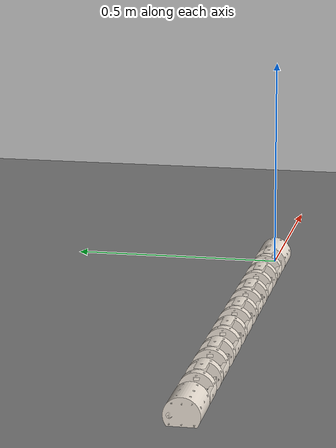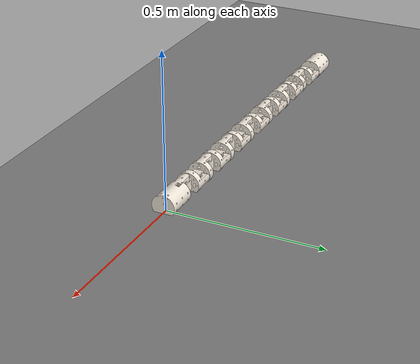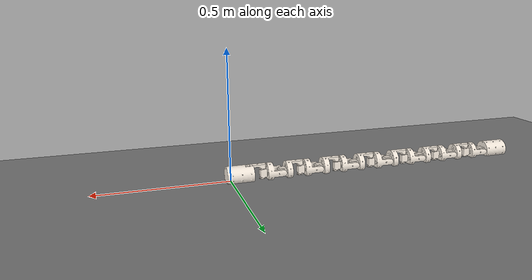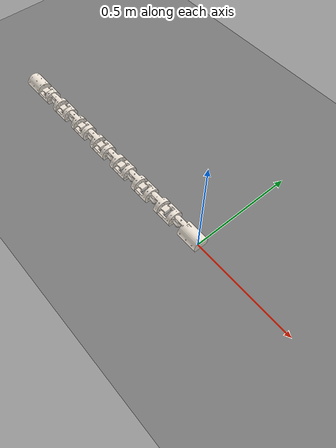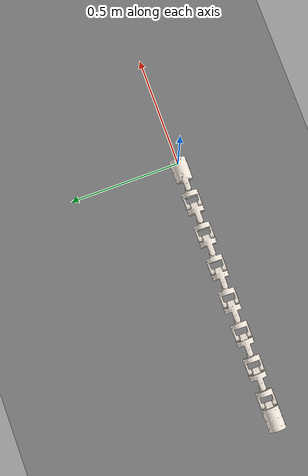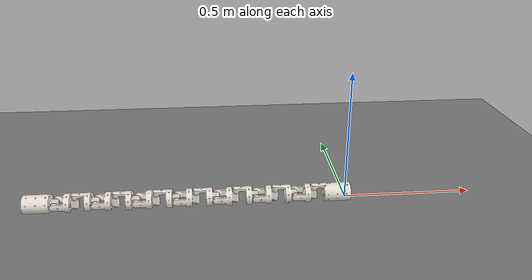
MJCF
<?xml version="1.0"?>

<mujoco model="14DOF-NW">
  <compiler angle="radian" coordinate="local" meshdir="meshes/" />
  <option timestep="0.002" gravity="0 0 -9.81"/>

  <asset>
    <texture type="skybox" builtin="flat" rgb1="1 1 1" rgb2=".9 .9 .9" width="128" height="128" />
    <texture name="floortex" type="2d" builtin="checker" rgb1=".1 .1 .1" rgb2=".9 .9 .9"
      width="512" height="512" mark="cross" markrgb=".8 .8 .8" />

    <!-- 定义材料，引用floortex纹理 -->
    <material name="floortex" texture="floortex" texuniform="true" reflectance="0.3" texrepeat="1 1"/>

    <mesh name="base_link" file="base_link.STL" />
    <mesh name="link1" file="link1.STL" />
    <mesh name="link2" file="link2.STL" />
    <mesh name="link3" file="link3.STL" />
    <mesh name="link4" file="link4.STL" />
    <mesh name="link5" file="link5.STL" />
    <mesh name="link6" file="link6.STL" />
    <mesh name="link7" file="link7.STL" />
    <mesh name="link8" file="link8.STL" />
    <mesh name="link9" file="link9.STL" />
    <mesh name="link10" file="link10.STL" />
    <mesh name="link11" file="link11.STL" />
    <mesh name="link12" file="link12.STL" />
    <mesh name="link13" file="link13.STL" />
    <mesh name="link14" file="link14.STL" />
    <material name="base_link_mat" rgba="0.95 0.91 0.86 1" specular="0" />
    <material name="link1_mat" rgba="0.95 0.91 0.86 1" specular="0" />
    <material name="link2_mat" rgba="0.95 0.91 0.86 1" specular="0" />
    <material name="link3_mat" rgba="0.95 0.91 0.86 1" specular="0" />
    <material name="link4_mat" rgba="0.95 0.91 0.86 1" specular="0" />
    <material name="link5_mat" rgba="0.95 0.91 0.86 1" specular="0" />
    <material name="link6_mat" rgba="0.95 0.91 0.86 1" specular="0" />
    <material name="link7_mat" rgba="0.95 0.91 0.86 1" specular="0" />
    <material name="link8_mat" rgba="0.95 0.91 0.86 1" specular="0" />
    <material name="link9_mat" rgba="0.95 0.91 0.86 1" specular="0" />
    <material name="link10_mat" rgba="0.95 0.91 0.86 1" specular="0" />
    <material name="link11_mat" rgba="0.95 0.91 0.86 1" specular="0" />
    <material name="link12_mat" rgba="0.95 0.91 0.86 1" specular="0" />
    <material name="link13_mat" rgba="0.95 0.91 0.86 1" specular="0" />
    <material name="link14_mat" rgba="0.95 0.91 0.86 1" specular="0" />
  </asset>

  <default>
    <default class="sts3215">
        <geom contype="0" conaffinity="0"/>
        <joint damping="0.60" frictionloss="0.052" armature="0.028"/>
        <position kp="17.8" kv="0.0" forcerange="-3.35 3.35"/>
    </default>
  </default>

  <worldbody>
    <!-- 地板 -->
    <geom name="floor" pos="0 0 0" size="10 10 .1" type="plane" material="floortex"
               condim="3" friction="0.8 0.1 0.1" density="0"/>
    <light directional="true" ambient=".3 .3 .3" pos="30 30 30" dir="0 -2 -1" diffuse=".5 .5 .5" specular=".5 .5 .5" />

    <!-- 蛇头 -->
    <body name="base_link" pos="0 0 0">
      <freejoint name="root_free"/>
      <inertial pos="-0.042451 -0.0001874 0.0174166" mass="0.1894535" fullinertia="0.0000697022 0.0002499936 0.0002906946 -0.0000000319 0.0000014988 -0.000000783"/>
      <geom pos="0 0 0" group="1" contype="0" conaffinity="0" material="base_link_mat" type="mesh" mesh="base_link" />
      <geom pos="0 0 0" rgba="0.9373 0.2667 0.2667 1" group="3" contype="1" conaffinity="1" type="mesh" mesh="base_link" />
      <body name="link1" pos="-0.1240009 -0.000016 0.0018299" quat="0.9999905 0.0043633 0 0">
        <joint name="yaw1" type="hinge" axis="0 0 1" limited="true" range="-1.57 1.57" damping="0.6" frictionloss="0.052"/>
        <inertial pos="-0.0334175 0.0001431 0.0182064" mass="0.116231" fullinertia="0.000063965 0.0000582243 0.000073187 -0.0000000058 0.0000001038 -0.0000000003"/>
        <geom pos="0 0 0" group="1" contype="0" conaffinity="0" material="link1_mat" type="mesh" mesh="link1" />
        <geom pos="0 0 0" rgba="0.9373 0.2667 0.2667 1" group="3" contype="1" conaffinity="1" type="mesh" mesh="link1" />
        <body name="link2" pos="-0.07581 0.0183 0.01835" quat="0.7071001 0.7071001 0.0030853 0.0030853">
          <joint name="pitch1" type="hinge" axis="-0.0087265 0 0.9999619" limited="true" range="-1.57 1.57" damping="0.6" frictionloss="0.052"/>
          <inertial pos="-0.0335751 0.0001431 0.0179141" mass="0.116231" fullinertia="0.0000639639 0.0000582243 0.0000731881 -0.0000000058 0.0000000233 -0.0000000004"/>
          <geom pos="0 0 0" group="1" contype="0" conaffinity="0" material="link2_mat" type="mesh" mesh="link2" />
          <geom pos="0 0 0" rgba="0.9373 0.2667 0.2667 1" group="3" contype="1" conaffinity="1" type="mesh" mesh="link2" />
          <body name="link3" pos="-0.0759672 -0.01835 0.0176877" quat="0.7040147 -0.7101583 -0.0000001 -0.0061973">
            <joint name="yaw2" type="hinge" axis="-0.0087259 -0.0087265 0.9999239" limited="true" range="-1.57 1.57" damping="0.6" frictionloss="0.052"/>
            <inertial pos="-0.0335751 -0.0000158 0.0179147" mass="0.116231" fullinertia="0.0000639639 0.0000582255 0.000073187 -0.0000000056 0.0000000233 -0.0000001309"/>
            <geom pos="0 0 0" group="1" contype="0" conaffinity="0" material="link3_mat" type="mesh" mesh="link3" />
            <geom pos="0 0 0" rgba="0.9373 0.2667 0.2667 1" group="3" contype="1" conaffinity="1" type="mesh" mesh="link3" />
            <body name="link4" pos="-0.0759686 0.0181892 0.0178472" quat="0.7040147 0.7101583 0.0000001 0.0061973">
              <joint name="pitch2" type="hinge" axis="-0.0087265 0 0.9999619" limited="true" range="-1.57 1.57" damping="0.6" frictionloss="0.052"/>
              <inertial pos="-0.0335751 0.0001431 0.0179141" mass="0.116231" fullinertia="0.0000639639 0.0000582243 0.0000731881 -0.0000000058 0.0000000233 -0.0000000004"/>
              <geom pos="0 0 0" group="1" contype="0" conaffinity="0" material="link4_mat" type="mesh" mesh="link4" />
              <geom pos="0 0 0" rgba="0.9373 0.2667 0.2667 1" group="3" contype="1" conaffinity="1" type="mesh" mesh="link4" />
              <body name="link5" pos="-0.0759672 -0.01835 0.0176877" quat="0.7040147 -0.7101583 -0.0000001 -0.0061973">
                <joint name="yaw3" type="hinge" axis="-0.0087259 -0.0087265 0.9999239" limited="true" range="-1.57 1.57" damping="0.6" frictionloss="0.052"/>
                <inertial pos="-0.0335751 -0.0000158 0.0179147" mass="0.116231" fullinertia="0.0000639639 0.0000582255 0.000073187 -0.0000000056 0.0000000233 -0.0000001309"/>
                <geom pos="0 0 0" group="1" contype="0" conaffinity="0" material="link5_mat" type="mesh" mesh="link5" />
                <geom pos="0 0 0" rgba="0.9373 0.2667 0.2667 1" group="3" contype="1" conaffinity="1" type="mesh" mesh="link5" />
                <body name="link6" pos="-0.0759686 0.0181892 0.0178472" quat="0.7040147 0.7101583 0.0000001 0.0061973">
                  <joint name="pitch3" type="hinge" axis="-0.0087265 0 0.9999619" limited="true" range="-1.57 1.57" damping="0.6" frictionloss="0.052"/>
                  <inertial pos="-0.0335751 0.0001431 0.0179141" mass="0.116231" fullinertia="0.0000639639 0.0000582243 0.0000731881 -0.0000000058 0.0000000233 -0.0000000004"/>
                  <geom pos="0 0 0" group="1" contype="0" conaffinity="0" material="link6_mat" type="mesh" mesh="link6" />
                  <geom pos="0 0 0" rgba="0.9373 0.2667 0.2667 1" group="3" contype="1" conaffinity="1" type="mesh" mesh="link6" />
                  <body name="link7" pos="-0.0759672 -0.01835 0.0176877" quat="0.7040147 -0.7101583 -0.0000001 -0.0061973">
                    <joint name="yaw4" type="hinge" axis="-0.0087259 -0.0087265 0.9999239" limited="true" range="-1.57 1.57" damping="0.6" frictionloss="0.052"/>
                    <inertial pos="-0.0335751 -0.0000158 0.0179147" mass="0.116231" fullinertia="0.0000639639 0.0000582255 0.000073187 -0.0000000056 0.0000000233 -0.0000001309"/>
                    <geom pos="0 0 0" group="1" contype="0" conaffinity="0" material="link7_mat" type="mesh" mesh="link7" />
                    <geom pos="0 0 0" rgba="0.9373 0.2667 0.2667 1" group="3" contype="1" conaffinity="1" type="mesh" mesh="link7" />
                    <body name="link8" pos="-0.0759686 0.0181892 0.0178472" quat="0.7040147 0.7101583 0.0000001 0.0061973">
                      <joint name="pitch4" type="hinge" axis="-0.0087265 0 0.9999619" limited="true" range="-1.57 1.57" damping="0.6" frictionloss="0.052"/>
                      <inertial pos="-0.0335751 0.0001431 0.0179141" mass="0.116231" fullinertia="0.0000639639 0.0000582243 0.0000731881 -0.0000000058 0.0000000233 -0.0000000004"/>
                      <geom pos="0 0 0" group="1" contype="0" conaffinity="0" material="link8_mat" type="mesh" mesh="link8" />
                      <geom pos="0 0 0" rgba="0.9373 0.2667 0.2667 1" group="3" contype="1" conaffinity="1" type="mesh" mesh="link8" />
                      <body name="link9" pos="-0.0759672 -0.01835 0.0176877" quat="0.7040147 -0.7101583 -0.0000001 -0.0061973">
                        <joint name="yaw5" type="hinge" axis="-0.0087259 -0.0087265 0.9999239" limited="true" range="-1.57 1.57" damping="0.6" frictionloss="0.052"/>
                        <inertial pos="-0.0335751 -0.0000158 0.0179147" mass="0.116231" fullinertia="0.0000639639 0.0000582255 0.000073187 -0.0000000056 0.0000000233 -0.0000001309"/>
                        <geom pos="0 0 0" group="1" contype="0" conaffinity="0" material="link9_mat" type="mesh" mesh="link9" />
                        <geom pos="0 0 0" rgba="0.9373 0.2667 0.2667 1" group="3" contype="1" conaffinity="1" type="mesh" mesh="link9" />
                        <body name="link10" pos="-0.0759686 0.0181892 0.0178472" quat="0.7040147 0.7101583 0.0000001 0.0061973">
                          <joint name="pitch5" type="hinge" axis="-0.0087265 0 0.9999619" limited="true" range="-1.57 1.57" damping="0.6" frictionloss="0.052"/>
                          <inertial pos="-0.0335751 0.0001431 0.0179141" mass="0.116231" fullinertia="0.0000639639 0.0000582243 0.0000731881 -0.0000000058 0.0000000233 -0.0000000004"/>
                          <geom pos="0 0 0" group="1" contype="0" conaffinity="0" material="link10_mat" type="mesh" mesh="link10" />
                          <geom pos="0 0 0" rgba="0.9373 0.2667 0.2667 1" group="3" contype="1" conaffinity="1" type="mesh" mesh="link10" />
                          <body name="link11" pos="-0.0759672 -0.01835 0.0176877" quat="0.7040147 -0.7101583 -0.0000001 -0.0061973">
                            <joint name="yaw6" type="hinge" axis="-0.0087259 -0.0087265 0.9999239" limited="true" range="-1.57 1.57" damping="0.6" frictionloss="0.052"/>
                            <inertial pos="-0.0335751 -0.0000158 0.0179147" mass="0.116231" fullinertia="0.0000639639 0.0000582255 0.000073187 -0.0000000056 0.0000000233 -0.0000001309"/>
                            <geom pos="0 0 0" group="1" contype="0" conaffinity="0" material="link11_mat" type="mesh" mesh="link11" />
                            <geom pos="0 0 0" rgba="0.9373 0.2667 0.2667 1" group="3" contype="1" conaffinity="1" type="mesh" mesh="link11" />
                            <body name="link12" pos="-0.0759686 0.0181892 0.0178472" quat="0.7040147 0.7101583 0.0000001 0.0061973">
                              <joint name="pitch6" type="hinge" axis="-0.0087265 0 0.9999619" limited="true" range="-1.57 1.57" damping="0.6" frictionloss="0.052"/>
                              <inertial pos="-0.0335751 0.0001431 0.0179141" mass="0.116231" fullinertia="0.0000639639 0.0000582243 0.0000731881 -0.0000000058 0.0000000233 -0.0000000004"/>
                              <geom pos="0 0 0" group="1" contype="0" conaffinity="0" material="link12_mat" type="mesh" mesh="link12" />
                              <geom pos="0 0 0" rgba="0.9373 0.2667 0.2667 1" group="3" contype="1" conaffinity="1" type="mesh" mesh="link12" />
                              <body name="link13" pos="-0.0759672 -0.01835 0.0176877" quat="0.7040147 -0.7101583 -0.0000001 -0.0061973">
                                <joint name="yaw7" type="hinge" axis="-0.0087259 -0.0087265 0.9999239" limited="true" range="-1.57 1.57" damping="0.6" frictionloss="0.052"/>
                                <inertial pos="-0.0335751 -0.0000158 0.0179147" mass="0.116231" fullinertia="0.0000639639 0.0000582255 0.000073187 -0.0000000056 0.0000000233 -0.0000001309"/>
                                <geom pos="0 0 0" group="1" contype="0" conaffinity="0" material="link13_mat" type="mesh" mesh="link13" />
                                <geom pos="0 0 0" rgba="0.9373 0.2667 0.2667 1" group="3" contype="1" conaffinity="1" type="mesh" mesh="link13" />
                                <body name="link14" pos="-0.0759686 0.0181892 0.0178472" quat="0.7040147 0.7101583 0.0000001 0.0061973">
                                  <joint name="pitch7" type="hinge" axis="-0.0087265 0 0.9999619" limited="true" range="-1.57 1.57" damping="0.6" frictionloss="0.052"/>
                                  <inertial pos="-0.0623007 0.0017158 0.0179431" mass="0.3531785" fullinertia="0.000182442 0.000287824 0.0002803171 0.000000443 0.0000005757 -0.0000001048"/>
                                  <geom pos="0 0 0" group="1" contype="0" conaffinity="0" material="link14_mat" type="mesh" mesh="link14" />
                                  <geom pos="0 0 0" rgba="0.9373 0.2667 0.2667 1" group="3" contype="1" conaffinity="1" type="mesh" mesh="link14" />
                                </body>
                              </body>
                            </body>
                          </body>
                        </body>
                      </body>
                    </body>
                  </body>
                </body>
              </body>
            </body>
          </body>
        </body>
      </body>
    </body>
  </worldbody>
  <actuator>
    <position class="sts3215" name="yaw1" joint="yaw1"/>
    <position class="sts3215" name="pitch1" joint="pitch1"/>
    <position class="sts3215" name="yaw2" joint="yaw2"/>
    <position class="sts3215" name="pitch2" joint="pitch2"/>
    <position class="sts3215" name="yaw3" joint="yaw3"/>
    <position class="sts3215" name="pitch3" joint="pitch3"/>
    <position class="sts3215" name="yaw4" joint="yaw4"/>
    <position class="sts3215" name="pitch4" joint="pitch4"/>
    <position class="sts3215" name="yaw5" joint="yaw5"/>
    <position class="sts3215" name="pitch5" joint="pitch5"/>
    <position class="sts3215" name="yaw6" joint="yaw6"/>
    <position class="sts3215" name="pitch6" joint="pitch6"/>
    <position class="sts3215" name="yaw7" joint="yaw7"/>
    <position class="sts3215" name="pitch7" joint="pitch7"/>
  </actuator>
</mujoco>
